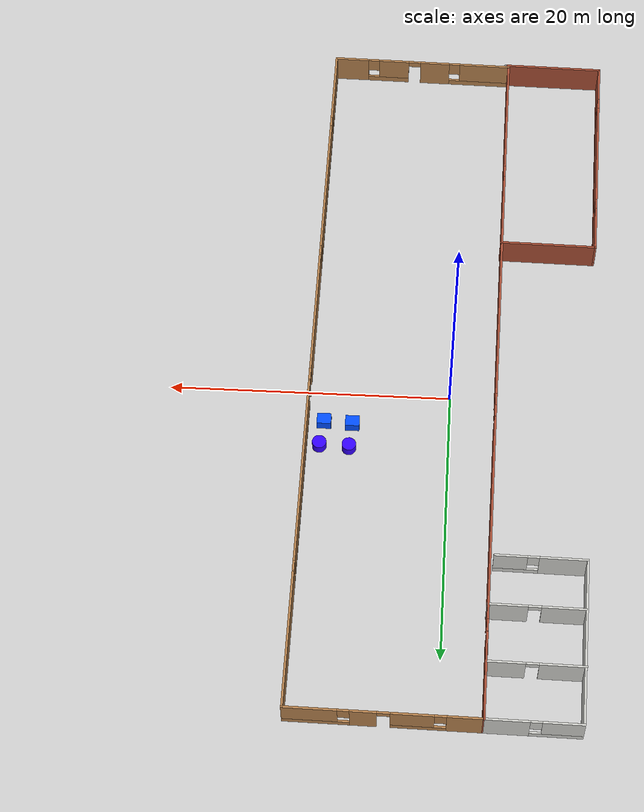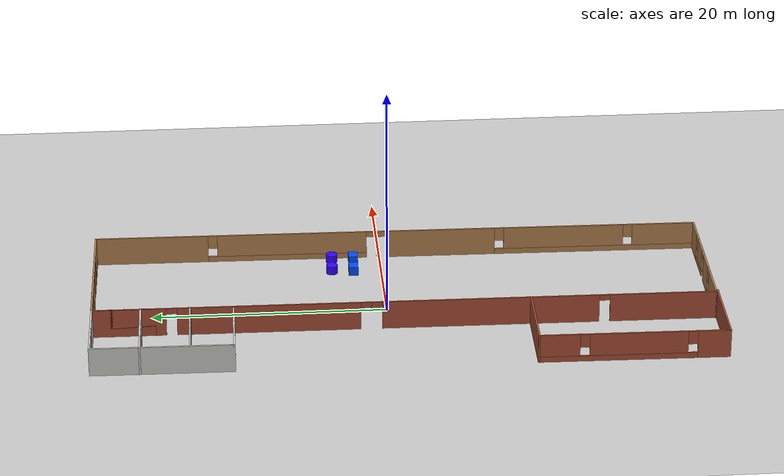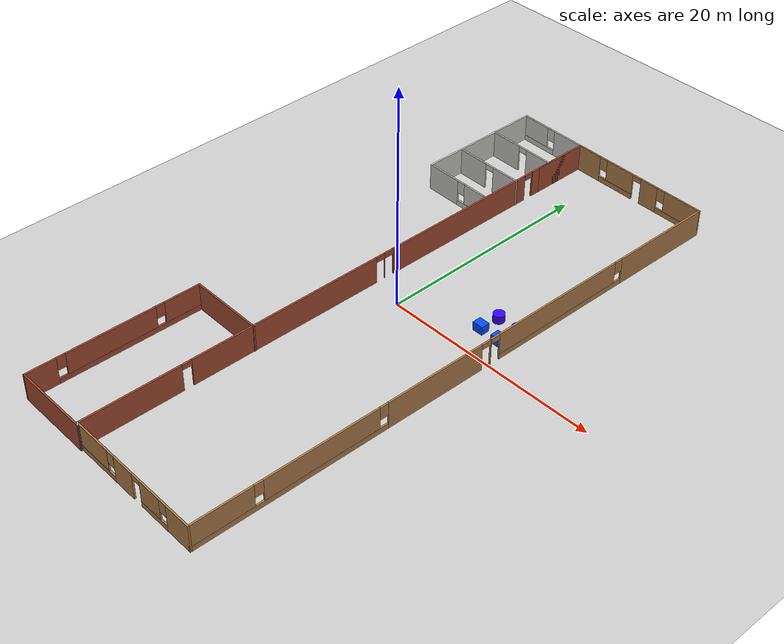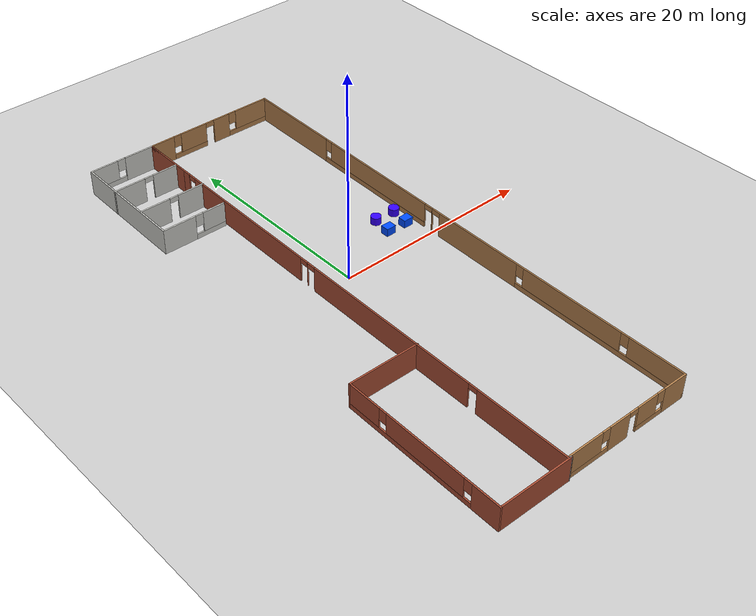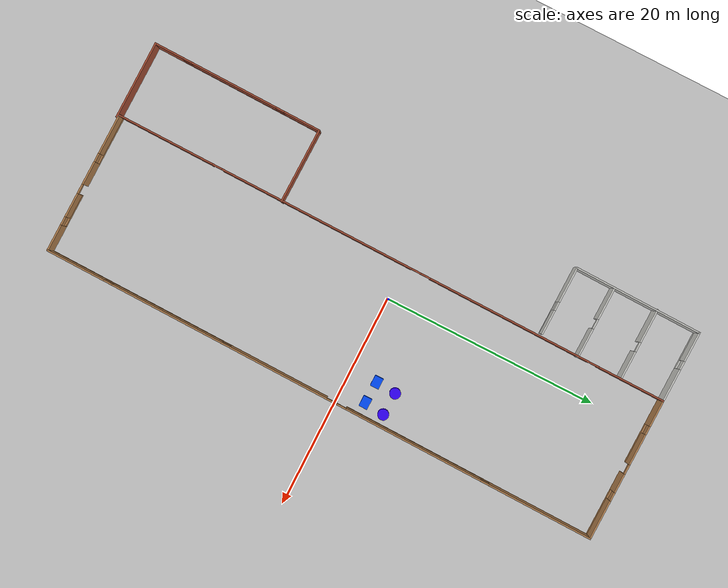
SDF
<sdf version="1.7">
 <world name="default">
  <model name="ground_plane">
   <static>1</static>
   <link name="link">
    <collision name="collision">
     <geometry><plane><normal>0 0 1</normal><size>100 100</size></plane></geometry>
     <surface>
      <contact><collide_bitmask>65535</collide_bitmask></contact>
      <friction><ode><mu>100</mu><mu2>50</mu2></ode></friction>
     </surface>
    </collision>
    <visual name="visual">
     <cast_shadows>0</cast_shadows>
     <geometry><plane><normal>0 0 1</normal><size>100 100</size></plane></geometry>
     <material>
      <script><uri>file://media/materials/scripts/gazebo.material</uri><name>Gazebo/Grey</name></script>
     </material>
    </visual>
   </link>
  </model>
  <model name="restaurant">
   <pose>-0.016395 -1.4412 0 0 0 -1.58539</pose>
   <link name="Wall_10">
    <collision name="Wall_10_Collision">
     <geometry><box><size>12 0.15 2.5</size></box></geometry>
     <pose>0 0 1.25 0 -0 0</pose>
    </collision>
    <visual name="Wall_10_Visual">
     <pose>0 0 1.25 0 -0 0</pose>
     <geometry><box><size>12 0.15 2.5</size></box></geometry>
     <material>
      <script><uri>file://media/materials/scripts/gazebo.material</uri><name>Gazebo/CeilingTiled</name></script>
      <ambient>1 0.764706 0.305882 1</ambient>
     </material>
     <meta><layer>0</layer></meta>
    </visual>
    <pose>-20.4579 -9.95516 0 0 -0 0</pose>
   </link>
   <link name="Wall_11">
    <pose>-14.5329 -6.78016 0 0 -0 1.5708</pose>
    <visual name="Wall_11_Visual_0">
     <pose>-1.5565 0 1.25 0 -0 0</pose>
     <geometry><box><size>3.38699 0.15 2.5</size></box></geometry>
     <material>
      <script><uri>file://media/materials/scripts/gazebo.material</uri><name>Gazebo/CeilingTiled</name></script>
      <ambient>1 0.764706 0.305882 1</ambient>
     </material>
     <meta><layer>0</layer></meta>
    </visual>
    <collision name="Wall_11_Collision_0">
     <geometry><box><size>3.38699 0.15 2.5</size></box></geometry>
     <pose>-1.5565 0 1.25 0 -0 0</pose>
    </collision>
    <visual name="Wall_11_Visual_1">
     <pose>1.6935 0 0.25 0 -0 0</pose>
     <geometry><box><size>3.11301 0.15 0.5</size></box></geometry>
     <material>
      <script><uri>file://media/materials/scripts/gazebo.material</uri><name>Gazebo/CeilingTiled</name></script>
      <ambient>1 0.764706 0.305882 1</ambient>
     </material>
     <meta><layer>0</layer></meta>
    </visual>
    <collision name="Wall_11_Collision_1">
     <geometry><box><size>3.11301 0.15 0.5</size></box></geometry>
     <pose>1.6935 0 0.25 0 -0 0</pose>
    </collision>
    <visual name="Wall_11_Visual_2">
     <pose>2.0935 0 1.5 0 -0 0</pose>
     <geometry><box><size>2.31301 0.15 2</size></box></geometry>
     <material>
      <script><uri>file://media/materials/scripts/gazebo.material</uri><name>Gazebo/CeilingTiled</name></script>
      <ambient>1 0.764706 0.305882 1</ambient>
     </material>
     <meta><layer>0</layer></meta>
    </visual>
    <collision name="Wall_11_Collision_2">
     <geometry><box><size>2.31301 0.15 2</size></box></geometry>
     <pose>2.0935 0 1.5 0 -0 0</pose>
    </collision>
    <visual name="Wall_11_Visual_3">
     <pose>0.536991 0 1.9 0 -0 0</pose>
     <geometry><box><size>0.8 0.15 1.2</size></box></geometry>
     <material>
      <script><uri>file://media/materials/scripts/gazebo.material</uri><name>Gazebo/CeilingTiled</name></script>
      <ambient>1 0.764706 0.305882 1</ambient>
     </material>
     <meta><layer>0</layer></meta>
    </visual>
    <collision name="Wall_11_Collision_3">
     <geometry><box><size>0.8 0.15 1.2</size></box></geometry>
     <pose>0.536991 0 1.9 0 -0 0</pose>
    </collision>
   </link>
   <link name="Wall_13">
    <collision name="Wall_13_Collision">
     <geometry><box><size>0.414926 0.15 2.5</size></box></geometry>
     <pose>0 0 1.25 0 -0 0</pose>
    </collision>
    <visual name="Wall_13_Visual">
     <pose>0 0 1.25 0 -0 0</pose>
     <geometry><box><size>0.414926 0.15 2.5</size></box></geometry>
     <material>
      <script><uri>file://media/materials/scripts/gazebo.material</uri><name>Gazebo/Grey</name></script>
      <ambient>1 1 1 1</ambient>
     </material>
     <meta><layer>0</layer></meta>
    </visual>
    <pose>26.2861 -2.99211 0 0 -0 1.02256</pose>
   </link>
   <link name="Wall_14">
    <collision name="Wall_14_Collision">
     <geometry><box><size>7.25 0.15 2.5</size></box></geometry>
     <pose>0 0 1.25 0 -0 0</pose>
    </collision>
    <visual name="Wall_14_Visual">
     <pose>0 0 1.25 0 -0 0</pose>
     <geometry><box><size>7.25 0.15 2.5</size></box></geometry>
     <material>
      <script><uri>file://media/materials/scripts/gazebo.material</uri><name>Gazebo/Bricks</name></script>
      <ambient>0.996078 0.47451 0.0196078 1</ambient>
     </material>
     <meta><layer>0</layer></meta>
    </visual>
    <pose>26.3552 -6.42906 0 0 -0 -1.5708</pose>
   </link>
   <link name="Wall_15">
    <pose>18.4302 -9.97906 0 0 -0 3.14159</pose>
    <visual name="Wall_15_Visual_0">
     <pose>-6.61611 0 1.25 0 -0 0</pose>
     <geometry><box><size>2.76777 0.15 2.5</size></box></geometry>
     <material>
      <script><uri>file://media/materials/scripts/gazebo.material</uri><name>Gazebo/Bricks</name></script>
      <ambient>0.996078 0.47451 0.0196078 1</ambient>
     </material>
     <meta><layer>0</layer></meta>
    </visual>
    <collision name="Wall_15_Collision_0">
     <geometry><box><size>2.76777 0.15 2.5</size></box></geometry>
     <pose>-6.61611 0 1.25 0 -0 0</pose>
    </collision>
    <visual name="Wall_15_Visual_1">
     <pose>1.38389 0 0.25 0 -0 0</pose>
     <geometry><box><size>13.2322 0.15 0.5</size></box></geometry>
     <material>
      <script><uri>file://media/materials/scripts/gazebo.material</uri><name>Gazebo/Bricks</name></script>
      <ambient>0.996078 0.47451 0.0196078 1</ambient>
     </material>
     <meta><layer>0</layer></meta>
    </visual>
    <collision name="Wall_15_Collision_1">
     <geometry><box><size>13.2322 0.15 0.5</size></box></geometry>
     <pose>1.38389 0 0.25 0 -0 0</pose>
    </collision>
    <visual name="Wall_15_Visual_2">
     <pose>-0.347226 0 1.5 0 -0 0</pose>
     <geometry><box><size>8.17 0.15 2</size></box></geometry>
     <material>
      <script><uri>file://media/materials/scripts/gazebo.material</uri><name>Gazebo/Bricks</name></script>
      <ambient>0.996078 0.47451 0.0196078 1</ambient>
     </material>
     <meta><layer>0</layer></meta>
    </visual>
    <collision name="Wall_15_Collision_2">
     <geometry><box><size>8.17 0.15 2</size></box></geometry>
     <pose>-0.347226 0 1.5 0 -0 0</pose>
    </collision>
    <visual name="Wall_15_Visual_3">
     <pose>6.26889 0 1.5 0 -0 0</pose>
     <geometry><box><size>3.46223 0.15 2</size></box></geometry>
     <material>
      <script><uri>file://media/materials/scripts/gazebo.material</uri><name>Gazebo/Bricks</name></script>
      <ambient>0.996078 0.47451 0.0196078 1</ambient>
     </material>
     <meta><layer>0</layer></meta>
    </visual>
    <collision name="Wall_15_Collision_3">
     <geometry><box><size>3.46223 0.15 2</size></box></geometry>
     <pose>6.26889 0 1.5 0 -0 0</pose>
    </collision>
    <visual name="Wall_15_Visual_4">
     <pose>-4.83223 0 1.9 0 -0 0</pose>
     <geometry><box><size>0.8 0.15 1.2</size></box></geometry>
     <material>
      <script><uri>file://media/materials/scripts/gazebo.material</uri><name>Gazebo/Bricks</name></script>
      <ambient>0.996078 0.47451 0.0196078 1</ambient>
     </material>
     <meta><layer>0</layer></meta>
    </visual>
    <collision name="Wall_15_Collision_4">
     <geometry><box><size>0.8 0.15 1.2</size></box></geometry>
     <pose>-4.83223 0 1.9 0 -0 0</pose>
    </collision>
    <visual name="Wall_15_Visual_5">
     <pose>4.13777 0 1.9 0 -0 0</pose>
     <geometry><box><size>0.8 0.15 1.2</size></box></geometry>
     <material>
      <script><uri>file://media/materials/scripts/gazebo.material</uri><name>Gazebo/Bricks</name></script>
      <ambient>0.996078 0.47451 0.0196078 1</ambient>
     </material>
     <meta><layer>0</layer></meta>
    </visual>
    <collision name="Wall_15_Collision_5">
     <geometry><box><size>0.8 0.15 1.2</size></box></geometry>
     <pose>4.13777 0 1.9 0 -0 0</pose>
    </collision>
   </link>
   <link name="Wall_16">
    <collision name="Wall_16_Collision">
     <geometry><box><size>7 0.15 2.5</size></box></geometry>
     <pose>0 0 1.25 0 -0 0</pose>
    </collision>
    <visual name="Wall_16_Visual">
     <pose>0 0 1.25 0 -0 0</pose>
     <geometry><box><size>7 0.15 2.5</size></box></geometry>
     <material>
      <script><uri>file://media/materials/scripts/gazebo.material</uri><name>Gazebo/Bricks</name></script>
      <ambient>0.996078 0.47451 0.0196078 1</ambient>
     </material>
     <meta><layer>0</layer></meta>
    </visual>
    <pose>10.5052 -6.55406 0 0 -0 1.5708</pose>
   </link>
   <link name="Wall_18">
    <pose>-18.1702 -6.57581 0 0 -0 -1.5708</pose>
    <visual name="Wall_18_Visual_0">
     <pose>-1.9755 0 1.25 0 -0 0</pose>
     <geometry><box><size>2.799 0.15 2.5</size></box></geometry>
     <material>
      <script><uri>file://media/materials/scripts/gazebo.material</uri><name>Gazebo/CeilingTiled</name></script>
      <ambient>1 0.764706 0.305882 1</ambient>
     </material>
     <meta><layer>0</layer></meta>
    </visual>
    <collision name="Wall_18_Collision_0">
     <geometry><box><size>2.799 0.15 2.5</size></box></geometry>
     <pose>-1.9755 0 1.25 0 -0 0</pose>
    </collision>
    <visual name="Wall_18_Visual_1">
     <pose>1.8495 0 1.25 0 -0 0</pose>
     <geometry><box><size>3.051 0.15 2.5</size></box></geometry>
     <material>
      <script><uri>file://media/materials/scripts/gazebo.material</uri><name>Gazebo/CeilingTiled</name></script>
      <ambient>1 0.764706 0.305882 1</ambient>
     </material>
     <meta><layer>0</layer></meta>
    </visual>
    <collision name="Wall_18_Collision_1">
     <geometry><box><size>3.051 0.15 2.5</size></box></geometry>
     <pose>1.8495 0 1.25 0 -0 0</pose>
    </collision>
    <visual name="Wall_18_Visual_2">
     <pose>-0.126 0 2.25 0 -0 0</pose>
     <geometry><box><size>0.9 0.15 0.5</size></box></geometry>
     <material>
      <script><uri>file://media/materials/scripts/gazebo.material</uri><name>Gazebo/CeilingTiled</name></script>
      <ambient>1 0.764706 0.305882 1</ambient>
     </material>
     <meta><layer>0</layer></meta>
    </visual>
    <collision name="Wall_18_Collision_2">
     <geometry><box><size>0.9 0.15 0.5</size></box></geometry>
     <pose>-0.126 0 2.25 0 -0 0</pose>
    </collision>
   </link>
   <link name="Wall_22">
    <pose>-22.2964 -6.69484 0 0 -0 -1.5708</pose>
    <visual name="Wall_22_Visual_0">
     <pose>-2.05485 0 1.25 0 -0 0</pose>
     <geometry><box><size>2.6403 0.15 2.5</size></box></geometry>
     <material>
      <script><uri>file://media/materials/scripts/gazebo.material</uri><name>Gazebo/CeilingTiled</name></script>
      <ambient>1 0.764706 0.305882 1</ambient>
     </material>
     <meta><layer>0</layer></meta>
    </visual>
    <collision name="Wall_22_Collision_0">
     <geometry><box><size>2.6403 0.15 2.5</size></box></geometry>
     <pose>-2.05485 0 1.25 0 -0 0</pose>
    </collision>
    <visual name="Wall_22_Visual_1">
     <pose>1.77015 0 1.25 0 -0 0</pose>
     <geometry><box><size>3.2097 0.15 2.5</size></box></geometry>
     <material>
      <script><uri>file://media/materials/scripts/gazebo.material</uri><name>Gazebo/CeilingTiled</name></script>
      <ambient>1 0.764706 0.305882 1</ambient>
     </material>
     <meta><layer>0</layer></meta>
    </visual>
    <collision name="Wall_22_Collision_1">
     <geometry><box><size>3.2097 0.15 2.5</size></box></geometry>
     <pose>1.77015 0 1.25 0 -0 0</pose>
    </collision>
    <visual name="Wall_22_Visual_2">
     <pose>-0.2847 0 2.25 0 -0 0</pose>
     <geometry><box><size>0.9 0.15 0.5</size></box></geometry>
     <material>
      <script><uri>file://media/materials/scripts/gazebo.material</uri><name>Gazebo/CeilingTiled</name></script>
      <ambient>1 0.764706 0.305882 1</ambient>
     </material>
     <meta><layer>0</layer></meta>
    </visual>
    <collision name="Wall_22_Collision_2">
     <geometry><box><size>0.9 0.15 0.5</size></box></geometry>
     <pose>-0.2847 0 2.25 0 -0 0</pose>
    </collision>
   </link>
   <link name="Wall_5">
    <pose>-26.3829 3.31984 0 0 -0 1.5708</pose>
    <visual name="Wall_5_Visual_0">
     <pose>-5.4842 0 1.25 0 -0 0</pose>
     <geometry><box><size>2.5316 0.15 2.5</size></box></geometry>
     <material>
      <script><uri>file://media/materials/scripts/gazebo.material</uri><name>Gazebo/Wood</name></script>
      <ambient>0.760784 0.662745 0.627451 1</ambient>
     </material>
     <meta><layer>0</layer></meta>
    </visual>
    <collision name="Wall_5_Collision_0">
     <geometry><box><size>2.5316 0.15 2.5</size></box></geometry>
     <pose>-5.4842 0 1.25 0 -0 0</pose>
    </collision>
    <visual name="Wall_5_Visual_1">
     <pose>1.30897 0 1.25 0 -0 0</pose>
     <geometry><box><size>1.79996 0.15 2.5</size></box></geometry>
     <material>
      <script><uri>file://media/materials/scripts/gazebo.material</uri><name>Gazebo/Wood</name></script>
      <ambient>0.760784 0.662745 0.627451 1</ambient>
     </material>
     <meta><layer>0</layer></meta>
    </visual>
    <collision name="Wall_5_Collision_1">
     <geometry><box><size>1.79996 0.15 2.5</size></box></geometry>
     <pose>1.30897 0 1.25 0 -0 0</pose>
    </collision>
    <visual name="Wall_5_Visual_2">
     <pose>-2.3547 0 0.25 0 -0 0</pose>
     <geometry><box><size>3.72739 0.15 0.5</size></box></geometry>
     <material>
      <script><uri>file://media/materials/scripts/gazebo.material</uri><name>Gazebo/Wood</name></script>
      <ambient>0.760784 0.662745 0.627451 1</ambient>
     </material>
     <meta><layer>0</layer></meta>
    </visual>
    <collision name="Wall_5_Collision_2">
     <geometry><box><size>3.72739 0.15 0.5</size></box></geometry>
     <pose>-2.3547 0 0.25 0 -0 0</pose>
    </collision>
    <visual name="Wall_5_Visual_3">
     <pose>4.47947 0 0.25 0 -0 0</pose>
     <geometry><box><size>4.54105 0.15 0.5</size></box></geometry>
     <material>
      <script><uri>file://media/materials/scripts/gazebo.material</uri><name>Gazebo/Wood</name></script>
      <ambient>0.760784 0.662745 0.627451 1</ambient>
     </material>
     <meta><layer>0</layer></meta>
    </visual>
    <collision name="Wall_5_Collision_3">
     <geometry><box><size>4.54105 0.15 0.5</size></box></geometry>
     <pose>4.47947 0 0.25 0 -0 0</pose>
    </collision>
    <visual name="Wall_5_Visual_4">
     <pose>-1.9547 0 1.5 0 -0 0</pose>
     <geometry><box><size>2.92739 0.15 2</size></box></geometry>
     <material>
      <script><uri>file://media/materials/scripts/gazebo.material</uri><name>Gazebo/Wood</name></script>
      <ambient>0.760784 0.662745 0.627451 1</ambient>
     </material>
     <meta><layer>0</layer></meta>
    </visual>
    <collision name="Wall_5_Collision_4">
     <geometry><box><size>2.92739 0.15 2</size></box></geometry>
     <pose>-1.9547 0 1.5 0 -0 0</pose>
    </collision>
    <visual name="Wall_5_Visual_5">
     <pose>-1.9547 0 1.5 0 -0 0</pose>
     <geometry><box><size>2.92739 0.15 2</size></box></geometry>
     <material>
      <script><uri>file://media/materials/scripts/gazebo.material</uri><name>Gazebo/Wood</name></script>
      <ambient>0.760784 0.662745 0.627451 1</ambient>
     </material>
     <meta><layer>0</layer></meta>
    </visual>
    <collision name="Wall_5_Collision_5">
     <geometry><box><size>2.92739 0.15 2</size></box></geometry>
     <pose>-1.9547 0 1.5 0 -0 0</pose>
    </collision>
    <visual name="Wall_5_Visual_6">
     <pose>4.87948 0 1.5 0 -0 0</pose>
     <geometry><box><size>3.74105 0.15 2</size></box></geometry>
     <material>
      <script><uri>file://media/materials/scripts/gazebo.material</uri><name>Gazebo/Wood</name></script>
      <ambient>0.760784 0.662745 0.627451 1</ambient>
     </material>
     <meta><layer>0</layer></meta>
    </visual>
    <collision name="Wall_5_Collision_6">
     <geometry><box><size>3.74105 0.15 2</size></box></geometry>
     <pose>4.87948 0 1.5 0 -0 0</pose>
    </collision>
    <visual name="Wall_5_Visual_7">
     <pose>-3.8184 0 1.9 0 -0 0</pose>
     <geometry><box><size>0.8 0.15 1.2</size></box></geometry>
     <material>
      <script><uri>file://media/materials/scripts/gazebo.material</uri><name>Gazebo/Wood</name></script>
      <ambient>0.760784 0.662745 0.627451 1</ambient>
     </material>
     <meta><layer>0</layer></meta>
    </visual>
    <collision name="Wall_5_Collision_7">
     <geometry><box><size>0.8 0.15 1.2</size></box></geometry>
     <pose>-3.8184 0 1.9 0 -0 0</pose>
    </collision>
    <visual name="Wall_5_Visual_8">
     <pose>2.60895 0 1.9 0 -0 0</pose>
     <geometry><box><size>0.8 0.15 1.2</size></box></geometry>
     <material>
      <script><uri>file://media/materials/scripts/gazebo.material</uri><name>Gazebo/Wood</name></script>
      <ambient>0.760784 0.662745 0.627451 1</ambient>
     </material>
     <meta><layer>0</layer></meta>
    </visual>
    <collision name="Wall_5_Collision_8">
     <geometry><box><size>0.8 0.15 1.2</size></box></geometry>
     <pose>2.60895 0 1.9 0 -0 0</pose>
    </collision>
    <visual name="Wall_5_Visual_9">
     <pose>-0.041009 0 2.25 0 -0 0</pose>
     <geometry><box><size>0.9 0.15 0.5</size></box></geometry>
     <material>
      <script><uri>file://media/materials/scripts/gazebo.material</uri><name>Gazebo/Wood</name></script>
      <ambient>0.760784 0.662745 0.627451 1</ambient>
     </material>
     <meta><layer>0</layer></meta>
    </visual>
    <collision name="Wall_5_Collision_9">
     <geometry><box><size>0.9 0.15 0.5</size></box></geometry>
     <pose>-0.041009 0 2.25 0 -0 0</pose>
    </collision>
    <visual name="Wall_5_Visual_10">
     <pose>-0.041009 0 2.25 0 -0 0</pose>
     <geometry><box><size>0.9 0.15 0.5</size></box></geometry>
     <material>
      <script><uri>file://media/materials/scripts/gazebo.material</uri><name>Gazebo/Wood</name></script>
      <ambient>0.760784 0.662745 0.627451 1</ambient>
     </material>
     <meta><layer>0</layer></meta>
    </visual>
    <collision name="Wall_5_Collision_10">
     <geometry><box><size>0.9 0.15 0.5</size></box></geometry>
     <pose>-0.041009 0 2.25 0 -0 0</pose>
    </collision>
   </link>
   <link name="Wall_6">
    <pose>-0.082907 9.99484 0 0 -0 0</pose>
    <visual name="Wall_6_Visual_0">
     <pose>-21.4488 0 1.25 0 -0 0</pose>
     <geometry><box><size>9.8523 0.15 2.5</size></box></geometry>
     <material>
      <script><uri>file://media/materials/scripts/gazebo.material</uri><name>Gazebo/Wood</name></script>
      <ambient>0.760784 0.662745 0.627451 1</ambient>
     </material>
     <meta><layer>0</layer></meta>
    </visual>
    <collision name="Wall_6_Collision_0">
     <geometry><box><size>9.8523 0.15 2.5</size></box></geometry>
     <pose>-21.4488 0 1.25 0 -0 0</pose>
    </collision>
    <visual name="Wall_6_Visual_1">
     <pose>-1.7017 0 1.25 0 -0 0</pose>
     <geometry><box><size>0.066 0.15 2.5</size></box></geometry>
     <material>
      <script><uri>file://media/materials/scripts/gazebo.material</uri><name>Gazebo/Wood</name></script>
      <ambient>0.760784 0.662745 0.627451 1</ambient>
     </material>
     <meta><layer>0</layer></meta>
    </visual>
    <collision name="Wall_6_Collision_1">
     <geometry><box><size>0.066 0.15 2.5</size></box></geometry>
     <pose>-1.7017 0 1.25 0 -0 0</pose>
    </collision>
    <visual name="Wall_6_Visual_2">
     <pose>3.9468 0 1.25 0 -0 0</pose>
     <geometry><box><size>9.431 0.15 2.5</size></box></geometry>
     <material>
      <script><uri>file://media/materials/scripts/gazebo.material</uri><name>Gazebo/Wood</name></script>
      <ambient>0.760784 0.662745 0.627451 1</ambient>
     </material>
     <meta><layer>0</layer></meta>
    </visual>
    <collision name="Wall_6_Collision_2">
     <geometry><box><size>9.431 0.15 2.5</size></box></geometry>
     <pose>3.9468 0 1.25 0 -0 0</pose>
    </collision>
    <visual name="Wall_6_Visual_3">
     <pose>-9.5787 0 0.25 0 -0 0</pose>
     <geometry><box><size>13.888 0.15 0.5</size></box></geometry>
     <material>
      <script><uri>file://media/materials/scripts/gazebo.material</uri><name>Gazebo/Wood</name></script>
      <ambient>0.760784 0.662745 0.627451 1</ambient>
     </material>
     <meta><layer>0</layer></meta>
    </visual>
    <collision name="Wall_6_Collision_3">
     <geometry><box><size>13.888 0.15 0.5</size></box></geometry>
     <pose>-9.5787 0 0.25 0 -0 0</pose>
    </collision>
    <visual name="Wall_6_Visual_4">
     <pose>17.5187 0 0.25 0 -0 0</pose>
     <geometry><box><size>17.7127 0.15 0.5</size></box></geometry>
     <material>
      <script><uri>file://media/materials/scripts/gazebo.material</uri><name>Gazebo/Wood</name></script>
      <ambient>0.760784 0.662745 0.627451 1</ambient>
     </material>
     <meta><layer>0</layer></meta>
    </visual>
    <collision name="Wall_6_Collision_4">
     <geometry><box><size>17.7127 0.15 0.5</size></box></geometry>
     <pose>17.5187 0 0.25 0 -0 0</pose>
    </collision>
    <visual name="Wall_6_Visual_5">
     <pose>-9.1787 0 1.5 0 -0 0</pose>
     <geometry><box><size>13.088 0.15 2</size></box></geometry>
     <material>
      <script><uri>file://media/materials/scripts/gazebo.material</uri><name>Gazebo/Wood</name></script>
      <ambient>0.760784 0.662745 0.627451 1</ambient>
     </material>
     <meta><layer>0</layer></meta>
    </visual>
    <collision name="Wall_6_Collision_5">
     <geometry><box><size>13.088 0.15 2</size></box></geometry>
     <pose>-9.1787 0 1.5 0 -0 0</pose>
    </collision>
    <visual name="Wall_6_Visual_6">
     <pose>-9.1787 0 1.5 0 -0 0</pose>
     <geometry><box><size>13.088 0.15 2</size></box></geometry>
     <material>
      <script><uri>file://media/materials/scripts/gazebo.material</uri><name>Gazebo/Wood</name></script>
      <ambient>0.760784 0.662745 0.627451 1</ambient>
     </material>
     <meta><layer>0</layer></meta>
    </visual>
    <collision name="Wall_6_Collision_6">
     <geometry><box><size>13.088 0.15 2</size></box></geometry>
     <pose>-9.1787 0 1.5 0 -0 0</pose>
    </collision>
    <visual name="Wall_6_Visual_7">
     <pose>14.7548 0 1.5 0 -0 0</pose>
     <geometry><box><size>10.585 0.15 2</size></box></geometry>
     <material>
      <script><uri>file://media/materials/scripts/gazebo.material</uri><name>Gazebo/Wood</name></script>
      <ambient>0.760784 0.662745 0.627451 1</ambient>
     </material>
     <meta><layer>0</layer></meta>
    </visual>
    <collision name="Wall_6_Collision_7">
     <geometry><box><size>10.585 0.15 2</size></box></geometry>
     <pose>14.7548 0 1.5 0 -0 0</pose>
    </collision>
    <visual name="Wall_6_Visual_8">
     <pose>23.6111 0 1.5 0 -0 0</pose>
     <geometry><box><size>5.5277 0.15 2</size></box></geometry>
     <material>
      <script><uri>file://media/materials/scripts/gazebo.material</uri><name>Gazebo/Wood</name></script>
      <ambient>0.760784 0.662745 0.627451 1</ambient>
     </material>
     <meta><layer>0</layer></meta>
    </visual>
    <collision name="Wall_6_Collision_8">
     <geometry><box><size>5.5277 0.15 2</size></box></geometry>
     <pose>23.6111 0 1.5 0 -0 0</pose>
    </collision>
    <visual name="Wall_6_Visual_9">
     <pose>-16.1227 0 1.9 0 -0 0</pose>
     <geometry><box><size>0.8 0.15 1.2</size></box></geometry>
     <material>
      <script><uri>file://media/materials/scripts/gazebo.material</uri><name>Gazebo/Wood</name></script>
      <ambient>0.760784 0.662745 0.627451 1</ambient>
     </material>
     <meta><layer>0</layer></meta>
    </visual>
    <collision name="Wall_6_Collision_9">
     <geometry><box><size>0.8 0.15 1.2</size></box></geometry>
     <pose>-16.1227 0 1.9 0 -0 0</pose>
    </collision>
    <visual name="Wall_6_Visual_10">
     <pose>9.0623 0 1.9 0 -0 0</pose>
     <geometry><box><size>0.8 0.15 1.2</size></box></geometry>
     <material>
      <script><uri>file://media/materials/scripts/gazebo.material</uri><name>Gazebo/Wood</name></script>
      <ambient>0.760784 0.662745 0.627451 1</ambient>
     </material>
     <meta><layer>0</layer></meta>
    </visual>
    <collision name="Wall_6_Collision_10">
     <geometry><box><size>0.8 0.15 1.2</size></box></geometry>
     <pose>9.0623 0 1.9 0 -0 0</pose>
    </collision>
    <visual name="Wall_6_Visual_11">
     <pose>20.4473 0 1.9 0 -0 0</pose>
     <geometry><box><size>0.8 0.15 1.2</size></box></geometry>
     <material>
      <script><uri>file://media/materials/scripts/gazebo.material</uri><name>Gazebo/Wood</name></script>
      <ambient>0.760784 0.662745 0.627451 1</ambient>
     </material>
     <meta><layer>0</layer></meta>
    </visual>
    <collision name="Wall_6_Collision_11">
     <geometry><box><size>0.8 0.15 1.2</size></box></geometry>
     <pose>20.4473 0 1.9 0 -0 0</pose>
    </collision>
    <visual name="Wall_6_Visual_12">
     <pose>-1.2187 0 2.25 0 -0 0</pose>
     <geometry><box><size>0.9 0.15 0.5</size></box></geometry>
     <material>
      <script><uri>file://media/materials/scripts/gazebo.material</uri><name>Gazebo/Wood</name></script>
      <ambient>0.760784 0.662745 0.627451 1</ambient>
     </material>
     <meta><layer>0</layer></meta>
    </visual>
    <collision name="Wall_6_Collision_12">
     <geometry><box><size>0.9 0.15 0.5</size></box></geometry>
     <pose>-1.2187 0 2.25 0 -0 0</pose>
    </collision>
    <visual name="Wall_6_Visual_13">
     <pose>-2.1847 0 2.25 0 -0 0</pose>
     <geometry><box><size>0.9 0.15 0.5</size></box></geometry>
     <material>
      <script><uri>file://media/materials/scripts/gazebo.material</uri><name>Gazebo/Wood</name></script>
      <ambient>0.760784 0.662745 0.627451 1</ambient>
     </material>
     <meta><layer>0</layer></meta>
    </visual>
    <collision name="Wall_6_Collision_13">
     <geometry><box><size>0.9 0.15 0.5</size></box></geometry>
     <pose>-2.1847 0 2.25 0 -0 0</pose>
    </collision>
    <visual name="Wall_6_Visual_14">
     <pose>-2.1847 0 2.25 0 -0 0</pose>
     <geometry><box><size>0.9 0.15 0.5</size></box></geometry>
     <material>
      <script><uri>file://media/materials/scripts/gazebo.material</uri><name>Gazebo/Wood</name></script>
      <ambient>0.760784 0.662745 0.627451 1</ambient>
     </material>
     <meta><layer>0</layer></meta>
    </visual>
    <collision name="Wall_6_Collision_14">
     <geometry><box><size>0.9 0.15 0.5</size></box></geometry>
     <pose>-2.1847 0 2.25 0 -0 0</pose>
    </collision>
   </link>
   <link name="Wall_7">
    <pose>26.2171 3.44484 0 0 -0 -1.5708</pose>
    <visual name="Wall_7_Visual_0">
     <pose>-5.3615 0 1.25 0 -0 0</pose>
     <geometry><box><size>2.52701 0.15 2.5</size></box></geometry>
     <material>
      <script><uri>file://media/materials/scripts/gazebo.material</uri><name>Gazebo/Wood</name></script>
      <ambient>0.760784 0.662745 0.627451 1</ambient>
     </material>
     <meta><layer>0</layer></meta>
    </visual>
    <collision name="Wall_7_Collision_0">
     <geometry><box><size>2.52701 0.15 2.5</size></box></geometry>
     <pose>-5.3615 0 1.25 0 -0 0</pose>
    </collision>
    <visual name="Wall_7_Visual_1">
     <pose>0.950009 0 1.25 0 -0 0</pose>
     <geometry><box><size>2.186 0.15 2.5</size></box></geometry>
     <material>
      <script><uri>file://media/materials/scripts/gazebo.material</uri><name>Gazebo/Wood</name></script>
      <ambient>0.760784 0.662745 0.627451 1</ambient>
     </material>
     <meta><layer>0</layer></meta>
    </visual>
    <collision name="Wall_7_Collision_1">
     <geometry><box><size>2.186 0.15 2.5</size></box></geometry>
     <pose>0.950009 0 1.25 0 -0 0</pose>
    </collision>
    <visual name="Wall_7_Visual_2">
     <pose>-2.57049 0 0.25 0 -0 0</pose>
     <geometry><box><size>3.055 0.15 0.5</size></box></geometry>
     <material>
      <script><uri>file://media/materials/scripts/gazebo.material</uri><name>Gazebo/Wood</name></script>
      <ambient>0.760784 0.662745 0.627451 1</ambient>
     </material>
     <meta><layer>0</layer></meta>
    </visual>
    <collision name="Wall_7_Collision_2">
     <geometry><box><size>3.055 0.15 0.5</size></box></geometry>
     <pose>-2.57049 0 0.25 0 -0 0</pose>
    </collision>
    <visual name="Wall_7_Visual_3">
     <pose>4.334 0 0.25 0 -0 0</pose>
     <geometry><box><size>4.58199 0.15 0.5</size></box></geometry>
     <material>
      <script><uri>file://media/materials/scripts/gazebo.material</uri><name>Gazebo/Wood</name></script>
      <ambient>0.760784 0.662745 0.627451 1</ambient>
     </material>
     <meta><layer>0</layer></meta>
    </visual>
    <collision name="Wall_7_Collision_3">
     <geometry><box><size>4.58199 0.15 0.5</size></box></geometry>
     <pose>4.334 0 0.25 0 -0 0</pose>
    </collision>
    <visual name="Wall_7_Visual_4">
     <pose>-2.17049 0 1.5 0 -0 0</pose>
     <geometry><box><size>2.255 0.15 2</size></box></geometry>
     <material>
      <script><uri>file://media/materials/scripts/gazebo.material</uri><name>Gazebo/Wood</name></script>
      <ambient>0.760784 0.662745 0.627451 1</ambient>
     </material>
     <meta><layer>0</layer></meta>
    </visual>
    <collision name="Wall_7_Collision_4">
     <geometry><box><size>2.255 0.15 2</size></box></geometry>
     <pose>-2.17049 0 1.5 0 -0 0</pose>
    </collision>
    <visual name="Wall_7_Visual_5">
     <pose>-2.17049 0 1.5 0 -0 0</pose>
     <geometry><box><size>2.255 0.15 2</size></box></geometry>
     <material>
      <script><uri>file://media/materials/scripts/gazebo.material</uri><name>Gazebo/Wood</name></script>
      <ambient>0.760784 0.662745 0.627451 1</ambient>
     </material>
     <meta><layer>0</layer></meta>
    </visual>
    <collision name="Wall_7_Collision_5">
     <geometry><box><size>2.255 0.15 2</size></box></geometry>
     <pose>-2.17049 0 1.5 0 -0 0</pose>
    </collision>
    <visual name="Wall_7_Visual_6">
     <pose>4.734 0 1.5 0 -0 0</pose>
     <geometry><box><size>3.78199 0.15 2</size></box></geometry>
     <material>
      <script><uri>file://media/materials/scripts/gazebo.material</uri><name>Gazebo/Wood</name></script>
      <ambient>0.760784 0.662745 0.627451 1</ambient>
     </material>
     <meta><layer>0</layer></meta>
    </visual>
    <collision name="Wall_7_Collision_6">
     <geometry><box><size>3.78199 0.15 2</size></box></geometry>
     <pose>4.734 0 1.5 0 -0 0</pose>
    </collision>
    <visual name="Wall_7_Visual_7">
     <pose>-3.69799 0 1.9 0 -0 0</pose>
     <geometry><box><size>0.8 0.15 1.2</size></box></geometry>
     <material>
      <script><uri>file://media/materials/scripts/gazebo.material</uri><name>Gazebo/Wood</name></script>
      <ambient>0.760784 0.662745 0.627451 1</ambient>
     </material>
     <meta><layer>0</layer></meta>
    </visual>
    <collision name="Wall_7_Collision_7">
     <geometry><box><size>0.8 0.15 1.2</size></box></geometry>
     <pose>-3.69799 0 1.9 0 -0 0</pose>
    </collision>
    <visual name="Wall_7_Visual_8">
     <pose>2.44301 0 1.9 0 -0 0</pose>
     <geometry><box><size>0.8 0.15 1.2</size></box></geometry>
     <material>
      <script><uri>file://media/materials/scripts/gazebo.material</uri><name>Gazebo/Wood</name></script>
      <ambient>0.760784 0.662745 0.627451 1</ambient>
     </material>
     <meta><layer>0</layer></meta>
    </visual>
    <collision name="Wall_7_Collision_8">
     <geometry><box><size>0.8 0.15 1.2</size></box></geometry>
     <pose>2.44301 0 1.9 0 -0 0</pose>
    </collision>
    <visual name="Wall_7_Visual_9">
     <pose>-0.592991 0 2.25 0 -0 0</pose>
     <geometry><box><size>0.9 0.15 0.5</size></box></geometry>
     <material>
      <script><uri>file://media/materials/scripts/gazebo.material</uri><name>Gazebo/Wood</name></script>
      <ambient>0.760784 0.662745 0.627451 1</ambient>
     </material>
     <meta><layer>0</layer></meta>
    </visual>
    <collision name="Wall_7_Collision_9">
     <geometry><box><size>0.9 0.15 0.5</size></box></geometry>
     <pose>-0.592991 0 2.25 0 -0 0</pose>
    </collision>
    <visual name="Wall_7_Visual_10">
     <pose>-0.592991 0 2.25 0 -0 0</pose>
     <geometry><box><size>0.9 0.15 0.5</size></box></geometry>
     <material>
      <script><uri>file://media/materials/scripts/gazebo.material</uri><name>Gazebo/Wood</name></script>
      <ambient>0.760784 0.662745 0.627451 1</ambient>
     </material>
     <meta><layer>0</layer></meta>
    </visual>
    <collision name="Wall_7_Collision_10">
     <geometry><box><size>0.9 0.15 0.5</size></box></geometry>
     <pose>-0.592991 0 2.25 0 -0 0</pose>
    </collision>
   </link>
   <link name="Wall_8">
    <pose>-0.082907 -3.23016 0 0 -0 -3.13684</pose>
    <visual name="Wall_8_Visual_0">
     <pose>-21.8254 0 1.25 0 -0 0</pose>
     <geometry><box><size>9.09973 0.15 2.5</size></box></geometry>
     <material>
      <script><uri>file://media/materials/scripts/gazebo.material</uri><name>Gazebo/Bricks</name></script>
      <ambient>0.996078 0.47451 0.0196078 1</ambient>
     </material>
     <meta><layer>0</layer></meta>
    </visual>
    <collision name="Wall_8_Collision_0">
     <geometry><box><size>9.09973 0.15 2.5</size></box></geometry>
     <pose>-21.8254 0 1.25 0 -0 0</pose>
    </collision>
    <visual name="Wall_8_Visual_1">
     <pose>-7.20486 0 1.25 0 -0 0</pose>
     <geometry><box><size>18.3414 0.15 2.5</size></box></geometry>
     <material>
      <script><uri>file://media/materials/scripts/gazebo.material</uri><name>Gazebo/Bricks</name></script>
      <ambient>0.996078 0.47451 0.0196078 1</ambient>
     </material>
     <meta><layer>0</layer></meta>
    </visual>
    <collision name="Wall_8_Collision_1">
     <geometry><box><size>18.3414 0.15 2.5</size></box></geometry>
     <pose>-7.20486 0 1.25 0 -0 0</pose>
    </collision>
    <visual name="Wall_8_Visual_2">
     <pose>2.87172 0 1.25 0 -0 0</pose>
     <geometry><box><size>0.01176 0.15 2.5</size></box></geometry>
     <material>
      <script><uri>file://media/materials/scripts/gazebo.material</uri><name>Gazebo/Bricks</name></script>
      <ambient>0.996078 0.47451 0.0196078 1</ambient>
     </material>
     <meta><layer>0</layer></meta>
    </visual>
    <collision name="Wall_8_Collision_2">
     <geometry><box><size>0.01176 0.15 2.5</size></box></geometry>
     <pose>2.87172 0 1.25 0 -0 0</pose>
    </collision>
    <visual name="Wall_8_Visual_3">
     <pose>11.4809 0 1.25 0 -0 0</pose>
     <geometry><box><size>15.4066 0.15 2.5</size></box></geometry>
     <material>
      <script><uri>file://media/materials/scripts/gazebo.material</uri><name>Gazebo/Bricks</name></script>
      <ambient>0.996078 0.47451 0.0196078 1</ambient>
     </material>
     <meta><layer>0</layer></meta>
    </visual>
    <collision name="Wall_8_Collision_3">
     <geometry><box><size>15.4066 0.15 2.5</size></box></geometry>
     <pose>11.4809 0 1.25 0 -0 0</pose>
    </collision>
    <visual name="Wall_8_Visual_4">
     <pose>23.2298 0 1.25 0 -0 0</pose>
     <geometry><box><size>6.29108 0.15 2.5</size></box></geometry>
     <material>
      <script><uri>file://media/materials/scripts/gazebo.material</uri><name>Gazebo/Bricks</name></script>
      <ambient>0.996078 0.47451 0.0196078 1</ambient>
     </material>
     <meta><layer>0</layer></meta>
    </visual>
    <collision name="Wall_8_Collision_4">
     <geometry><box><size>6.29108 0.15 2.5</size></box></geometry>
     <pose>23.2298 0 1.25 0 -0 0</pose>
    </collision>
    <visual name="Wall_8_Visual_5">
     <pose>23.6666 0 1.25 0 -0 0</pose>
     <geometry><box><size>5.4173 0.15 2.5</size></box></geometry>
     <material>
      <script><uri>file://media/materials/scripts/gazebo.material</uri><name>Gazebo/Bricks</name></script>
      <ambient>0.996078 0.47451 0.0196078 1</ambient>
     </material>
     <meta><layer>0</layer></meta>
    </visual>
    <collision name="Wall_8_Collision_5">
     <geometry><box><size>5.4173 0.15 2.5</size></box></geometry>
     <pose>23.6666 0 1.25 0 -0 0</pose>
    </collision>
    <visual name="Wall_8_Visual_6">
     <pose>-16.8256 0 2.25 0 -0 0</pose>
     <geometry><box><size>0.9 0.15 0.5</size></box></geometry>
     <material>
      <script><uri>file://media/materials/scripts/gazebo.material</uri><name>Gazebo/Bricks</name></script>
      <ambient>0.996078 0.47451 0.0196078 1</ambient>
     </material>
     <meta><layer>0</layer></meta>
    </visual>
    <collision name="Wall_8_Collision_6">
     <geometry><box><size>0.9 0.15 0.5</size></box></geometry>
     <pose>-16.8256 0 2.25 0 -0 0</pose>
    </collision>
    <visual name="Wall_8_Visual_7">
     <pose>2.41584 0 2.25 0 -0 0</pose>
     <geometry><box><size>0.9 0.15 0.5</size></box></geometry>
     <material>
      <script><uri>file://media/materials/scripts/gazebo.material</uri><name>Gazebo/Bricks</name></script>
      <ambient>0.996078 0.47451 0.0196078 1</ambient>
     </material>
     <meta><layer>0</layer></meta>
    </visual>
    <collision name="Wall_8_Collision_7">
     <geometry><box><size>0.9 0.15 0.5</size></box></geometry>
     <pose>2.41584 0 2.25 0 -0 0</pose>
    </collision>
    <visual name="Wall_8_Visual_8">
     <pose>3.3276 0 2.25 0 -0 0</pose>
     <geometry><box><size>0.9 0.15 0.5</size></box></geometry>
     <material>
      <script><uri>file://media/materials/scripts/gazebo.material</uri><name>Gazebo/Bricks</name></script>
      <ambient>0.996078 0.47451 0.0196078 1</ambient>
     </material>
     <meta><layer>0</layer></meta>
    </visual>
    <collision name="Wall_8_Collision_8">
     <geometry><box><size>0.9 0.15 0.5</size></box></geometry>
     <pose>3.3276 0 2.25 0 -0 0</pose>
    </collision>
    <visual name="Wall_8_Visual_9">
     <pose>19.6211 0 2.25 0 -0 0</pose>
     <geometry><box><size>0.873783 0.15 0.5</size></box></geometry>
     <material>
      <script><uri>file://media/materials/scripts/gazebo.material</uri><name>Gazebo/Bricks</name></script>
      <ambient>0.996078 0.47451 0.0196078 1</ambient>
     </material>
     <meta><layer>0</layer></meta>
    </visual>
    <collision name="Wall_8_Collision_9">
     <geometry><box><size>0.873783 0.15 0.5</size></box></geometry>
     <pose>19.6211 0 2.25 0 -0 0</pose>
    </collision>
   </link>
   <link name="Wall_9">
    <pose>-26.3829 -6.65516 0 0 -0 -1.5708</pose>
    <visual name="Wall_9_Visual_0">
     <pose>-1.8175 0 1.25 0 -0 0</pose>
     <geometry><box><size>3.11501 0.15 2.5</size></box></geometry>
     <material>
      <script><uri>file://media/materials/scripts/gazebo.material</uri><name>Gazebo/CeilingTiled</name></script>
      <ambient>1 0.764706 0.305882 1</ambient>
     </material>
     <meta><layer>0</layer></meta>
    </visual>
    <collision name="Wall_9_Collision_0">
     <geometry><box><size>3.11501 0.15 2.5</size></box></geometry>
     <pose>-1.8175 0 1.25 0 -0 0</pose>
    </collision>
    <visual name="Wall_9_Visual_1">
     <pose>1.5575 0 0.25 0 -0 0</pose>
     <geometry><box><size>3.63499 0.15 0.5</size></box></geometry>
     <material>
      <script><uri>file://media/materials/scripts/gazebo.material</uri><name>Gazebo/CeilingTiled</name></script>
      <ambient>1 0.764706 0.305882 1</ambient>
     </material>
     <meta><layer>0</layer></meta>
    </visual>
    <collision name="Wall_9_Collision_1">
     <geometry><box><size>3.63499 0.15 0.5</size></box></geometry>
     <pose>1.5575 0 0.25 0 -0 0</pose>
    </collision>
    <visual name="Wall_9_Visual_2">
     <pose>1.9575 0 1.5 0 -0 0</pose>
     <geometry><box><size>2.83499 0.15 2</size></box></geometry>
     <material>
      <script><uri>file://media/materials/scripts/gazebo.material</uri><name>Gazebo/CeilingTiled</name></script>
      <ambient>1 0.764706 0.305882 1</ambient>
     </material>
     <meta><layer>0</layer></meta>
    </visual>
    <collision name="Wall_9_Collision_2">
     <geometry><box><size>2.83499 0.15 2</size></box></geometry>
     <pose>1.9575 0 1.5 0 -0 0</pose>
    </collision>
    <visual name="Wall_9_Visual_3">
     <pose>0.140009 0 1.9 0 -0 0</pose>
     <geometry><box><size>0.8 0.15 1.2</size></box></geometry>
     <material>
      <script><uri>file://media/materials/scripts/gazebo.material</uri><name>Gazebo/CeilingTiled</name></script>
      <ambient>1 0.764706 0.305882 1</ambient>
     </material>
     <meta><layer>0</layer></meta>
    </visual>
    <collision name="Wall_9_Collision_3">
     <geometry><box><size>0.8 0.15 1.2</size></box></geometry>
     <pose>0.140009 0 1.9 0 -0 0</pose>
    </collision>
   </link>
   <static>1</static>
  </model>
  <model name="blue_cylinder_2_clone_2_clone_1">
   <link name="link">
    <inertial>
     <mass>1</mass>
     <inertia><ixx>0.145833</ixx><ixy>0</ixy><ixz>0</ixz><iyy>0.145833</iyy><iyz>0</iyz><izz>0.125</izz></inertia>
    </inertial>
    <visual name="visual">
     <geometry><cylinder><radius>0.5</radius><length>0.74</length></cylinder></geometry>
     <material>
      <script><name>Gazebo/Grey</name><uri>file://media/materials/scripts/gazebo.material</uri></script>
      <shader type="pixel"><normal_map>__default__</normal_map></shader>
      <ambient>0.2 0 1 1</ambient>
      <diffuse>0.2 0 1 1</diffuse>
      <specular>0.2 0 1 1</specular>
      <emissive>0 0 0 1</emissive>
     </material>
    </visual>
    <collision name="collision">
     <geometry><cylinder><radius>0.5</radius><length>1</length></cylinder></geometry>
     <surface>
      <friction>
       <ode><mu>1</mu><mu2>1</mu2><fdir1>0 0 0</fdir1><slip1>0</slip1><slip2>0</slip2></ode>
       <torsional>
        <coefficient>1</coefficient>
        <patch_radius>0</patch_radius>
        <surface_radius>0</surface_radius>
        <use_patch_radius>1</use_patch_radius>
        <ode><slip>0</slip></ode>
       </torsional>
      </friction>
      <bounce><restitution_coefficient>0</restitution_coefficient><threshold>1e+06</threshold></bounce>
      <contact>
       <collide_without_contact>0</collide_without_contact>
       <collide_without_contact_bitmask>1</collide_without_contact_bitmask>
       <collide_bitmask>1</collide_bitmask>
       <ode>
        <soft_cfm>0</soft_cfm>
        <soft_erp>0.2</soft_erp>
        <kp>1e+13</kp>
        <kd>1</kd>
        <max_vel>0.01</max_vel>
        <min_depth>0</min_depth>
       </ode>
       <bullet>
        <split_impulse>1</split_impulse>
        <split_impulse_penetration_threshold>-0.01</split_impulse_penetration_threshold>
        <soft_cfm>0</soft_cfm>
        <soft_erp>0.2</soft_erp>
        <kp>1e+13</kp>
        <kd>1</kd>
       </bullet>
      </contact>
     </surface>
    </collision>
   </link>
   <static>0</static>
   <pose>9.09454 4.25145 0.499998 2e-06 -0 0.196656</pose>
  </model>
  <model name="blue_cylinder_2_clone_2_clone_2">
   <link name="link">
    <inertial>
     <mass>1</mass>
     <inertia><ixx>0.145833</ixx><ixy>0</ixy><ixz>0</ixz><iyy>0.145833</iyy><iyz>0</iyz><izz>0.125</izz></inertia>
    </inertial>
    <visual name="visual">
     <geometry><cylinder><radius>0.5</radius><length>0.74</length></cylinder></geometry>
     <material>
      <script><name>Gazebo/Grey</name><uri>file://media/materials/scripts/gazebo.material</uri></script>
      <shader type="pixel"><normal_map>__default__</normal_map></shader>
      <ambient>0.2 0 1 1</ambient>
      <diffuse>0.2 0 1 1</diffuse>
      <specular>0.2 0 1 1</specular>
      <emissive>0 0 0 1</emissive>
     </material>
    </visual>
    <collision name="collision">
     <geometry><cylinder><radius>0.5</radius><length>1</length></cylinder></geometry>
     <surface>
      <friction>
       <ode><mu>1</mu><mu2>1</mu2><fdir1>0 0 0</fdir1><slip1>0</slip1><slip2>0</slip2></ode>
       <torsional>
        <coefficient>1</coefficient>
        <patch_radius>0</patch_radius>
        <surface_radius>0</surface_radius>
        <use_patch_radius>1</use_patch_radius>
        <ode><slip>0</slip></ode>
       </torsional>
      </friction>
      <bounce><restitution_coefficient>0</restitution_coefficient><threshold>1e+06</threshold></bounce>
      <contact>
       <collide_without_contact>0</collide_without_contact>
       <collide_without_contact_bitmask>1</collide_without_contact_bitmask>
       <collide_bitmask>1</collide_bitmask>
       <ode>
        <soft_cfm>0</soft_cfm>
        <soft_erp>0.2</soft_erp>
        <kp>1e+13</kp>
        <kd>1</kd>
        <max_vel>0.01</max_vel>
        <min_depth>0</min_depth>
       </ode>
       <bullet>
        <split_impulse>1</split_impulse>
        <split_impulse_penetration_threshold>-0.01</split_impulse_penetration_threshold>
        <soft_cfm>0</soft_cfm>
        <soft_erp>0.2</soft_erp>
        <kp>1e+13</kp>
        <kd>1</kd>
       </bullet>
      </contact>
     </surface>
    </collision>
   </link>
   <static>0</static>
   <pose>6.99911 4.3334 0.499992 -2e-06 0 0.196656</pose>
  </model>
  <model name="blue_box_0">
   <link name="link">
    <inertial>
     <mass>1</mass>
     <inertia>
      <ixx>0.166667</ixx>
      <ixy>0</ixy>
      <ixz>0</ixz>
      <iyy>0.166667</iyy>
      <iyz>0</iyz>
      <izz>0.166667</izz>
     </inertia>
    </inertial>
    <visual name="visual">
     <geometry><box><size>1 0.8 0.8</size></box></geometry>
     <material>
      <script><name>Gazebo/Grey</name><uri>file://media/materials/scripts/gazebo.material</uri></script>
      <shader type="pixel"><normal_map>__default__</normal_map></shader>
      <ambient>0 0.3 1 1</ambient>
      <diffuse>0 0.3 1 1</diffuse>
      <specular>0 0.3 1 1</specular>
      <emissive>0 0 0 1</emissive>
     </material>
    </visual>
    <collision name="collision">
     <geometry><box><size>1 1 1</size></box></geometry>
     <surface>
      <friction>
       <ode><mu>1</mu><mu2>1</mu2><fdir1>0 0 0</fdir1><slip1>0</slip1><slip2>0</slip2></ode>
       <torsional>
        <coefficient>1</coefficient>
        <patch_radius>0</patch_radius>
        <surface_radius>0</surface_radius>
        <use_patch_radius>1</use_patch_radius>
        <ode><slip>0</slip></ode>
       </torsional>
      </friction>
      <bounce><restitution_coefficient>0</restitution_coefficient><threshold>1e+06</threshold></bounce>
      <contact>
       <collide_without_contact>0</collide_without_contact>
       <collide_without_contact_bitmask>1</collide_without_contact_bitmask>
       <collide_bitmask>1</collide_bitmask>
       <ode>
        <soft_cfm>0</soft_cfm>
        <soft_erp>0.2</soft_erp>
        <kp>1e+13</kp>
        <kd>1</kd>
        <max_vel>0.01</max_vel>
        <min_depth>0</min_depth>
       </ode>
       <bullet>
        <split_impulse>1</split_impulse>
        <split_impulse_penetration_threshold>-0.01</split_impulse_penetration_threshold>
        <soft_cfm>0</soft_cfm>
        <soft_erp>0.2</soft_erp>
        <kp>1e+13</kp>
        <kd>1</kd>
       </bullet>
      </contact>
     </surface>
    </collision>
   </link>
   <static>0</static>
   <pose>8.85659 2.39867 0.5 0 -0 0</pose>
  </model>
  <model name="blue_box_1">
   <link name="link">
    <inertial>
     <mass>1</mass>
     <inertia>
      <ixx>0.166667</ixx>
      <ixy>0</ixy>
      <ixz>0</ixz>
      <iyy>0.166667</iyy>
      <iyz>0</iyz>
      <izz>0.166667</izz>
     </inertia>
    </inertial>
    <visual name="visual">
     <geometry><box><size>1 0.8 0.8</size></box></geometry>
     <material>
      <script><name>Gazebo/Grey</name><uri>file://media/materials/scripts/gazebo.material</uri></script>
      <shader type="pixel"><normal_map>__default__</normal_map></shader>
      <ambient>0 0.3 1 1</ambient>
      <diffuse>0 0.3 1 1</diffuse>
      <specular>0 0.3 1 1</specular>
      <emissive>0 0 0 1</emissive>
     </material>
    </visual>
    <collision name="collision">
     <geometry><box><size>1 1 1</size></box></geometry>
     <surface>
      <friction>
       <ode><mu>1</mu><mu2>1</mu2><fdir1>0 0 0</fdir1><slip1>0</slip1><slip2>0</slip2></ode>
       <torsional>
        <coefficient>1</coefficient>
        <patch_radius>0</patch_radius>
        <surface_radius>0</surface_radius>
        <use_patch_radius>1</use_patch_radius>
        <ode><slip>0</slip></ode>
       </torsional>
      </friction>
      <bounce><restitution_coefficient>0</restitution_coefficient><threshold>1e+06</threshold></bounce>
      <contact>
       <collide_without_contact>0</collide_without_contact>
       <collide_without_contact_bitmask>1</collide_without_contact_bitmask>
       <collide_bitmask>1</collide_bitmask>
       <ode>
        <soft_cfm>0</soft_cfm>
        <soft_erp>0.2</soft_erp>
        <kp>1e+13</kp>
        <kd>1</kd>
        <max_vel>0.01</max_vel>
        <min_depth>0</min_depth>
       </ode>
       <bullet>
        <split_impulse>1</split_impulse>
        <split_impulse_penetration_threshold>-0.01</split_impulse_penetration_threshold>
        <soft_cfm>0</soft_cfm>
        <soft_erp>0.2</soft_erp>
        <kp>1e+13</kp>
        <kd>1</kd>
       </bullet>
      </contact>
     </surface>
    </collision>
   </link>
   <static>0</static>
   <pose>6.84358 2.48008 0.5 0 -0 0</pose>
  </model>
 </world>
</sdf>
